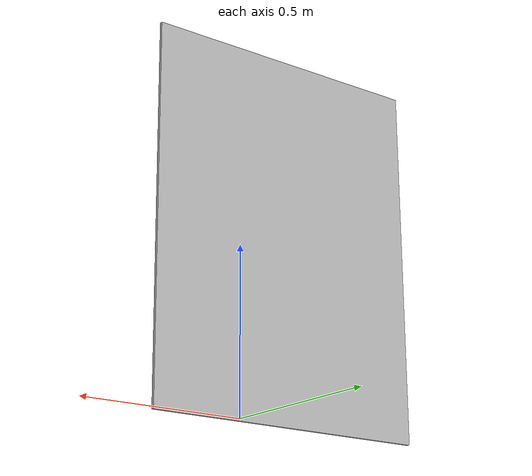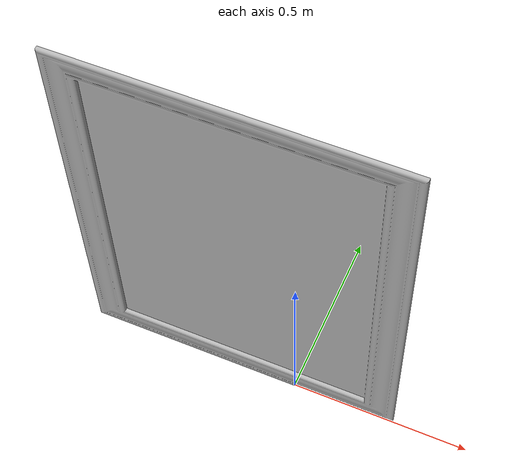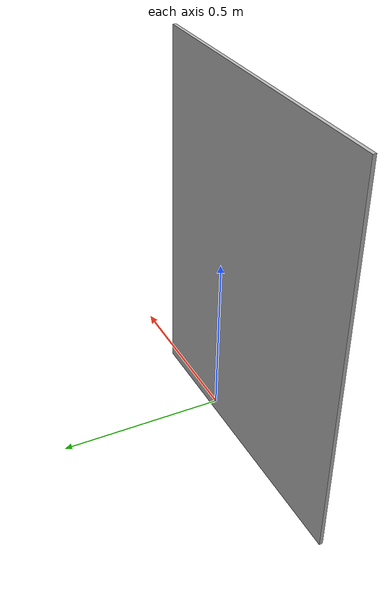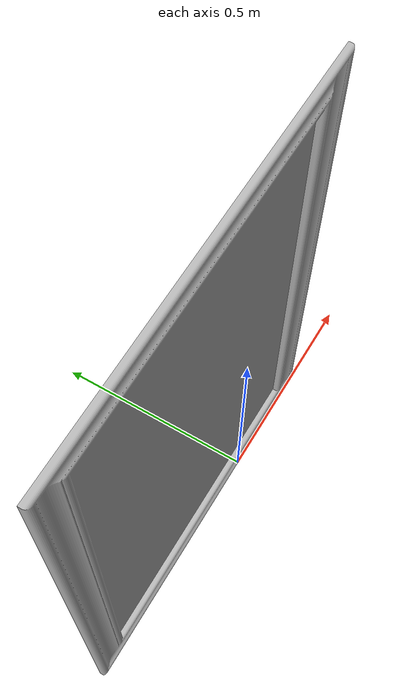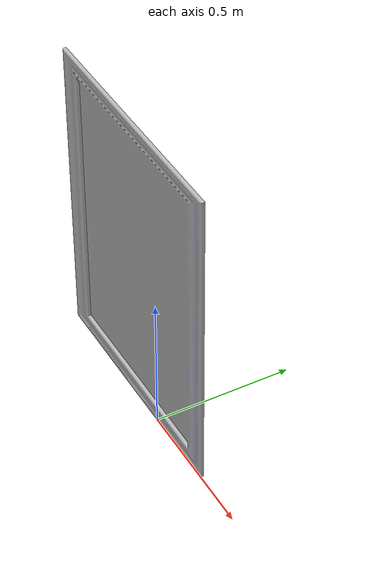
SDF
<?xml version="1.0" ?>
<sdf version="1.4">
  <model name="PINTURA-Religiosa16">
    <link name="link">
      <collision name="collision">
	<geometry>
          <mesh>
            <uri>model://Artistic-Picture/meshes/model.dae</uri>
          </mesh>
        </geometry>
      </collision>
      <visual name="visual">
        <geometry>
          <mesh>
            <uri>model://Artistic-Picture/meshes/model.dae</uri>
	    <scale>0.5 0.5 0.5</scale>
          </mesh>
        </geometry>
      </visual>
    </link>
    <static>1</static>
  </model>
</sdf>
